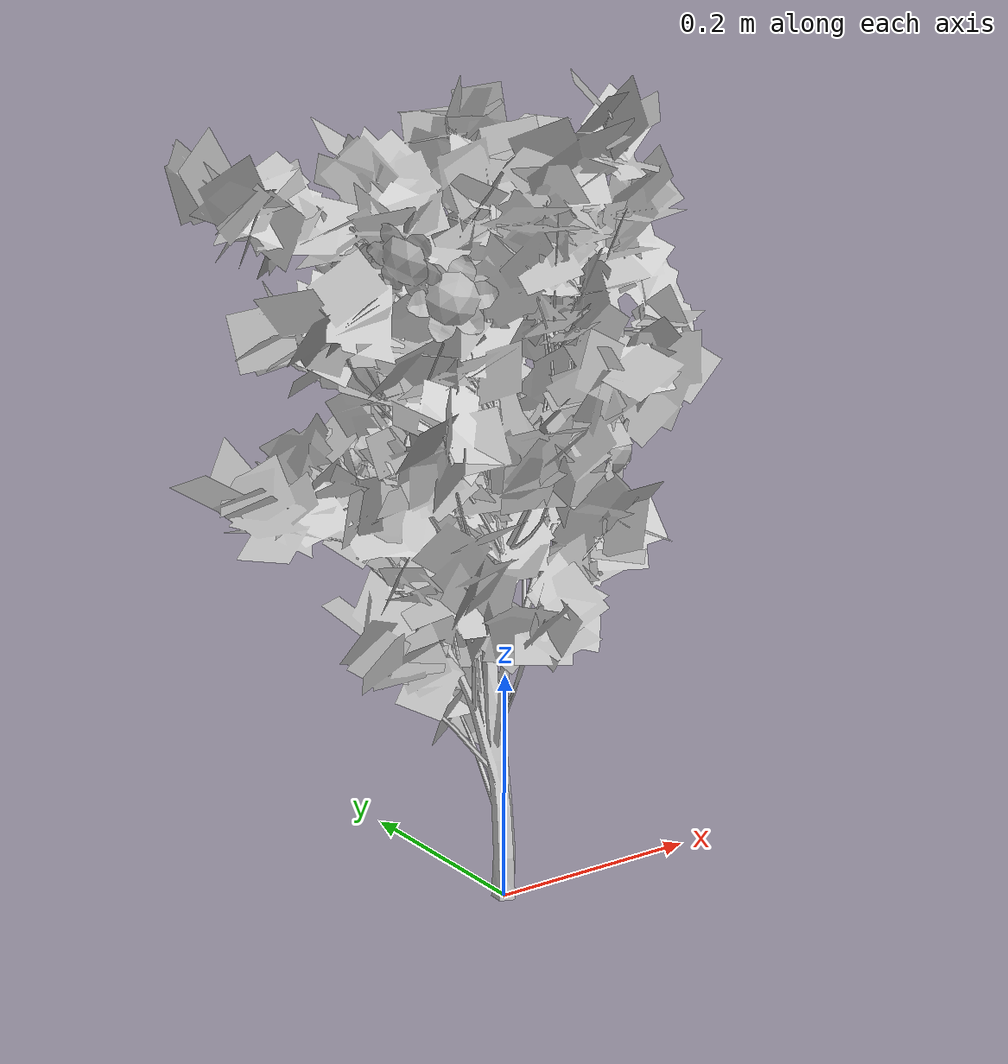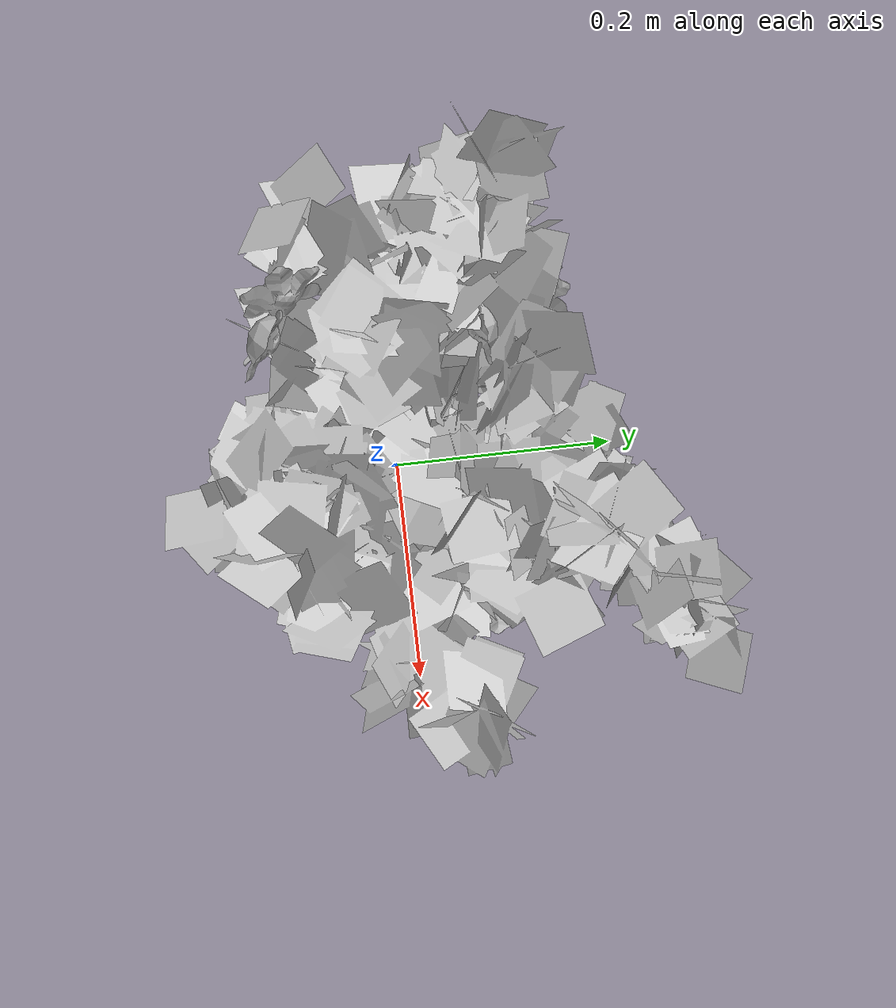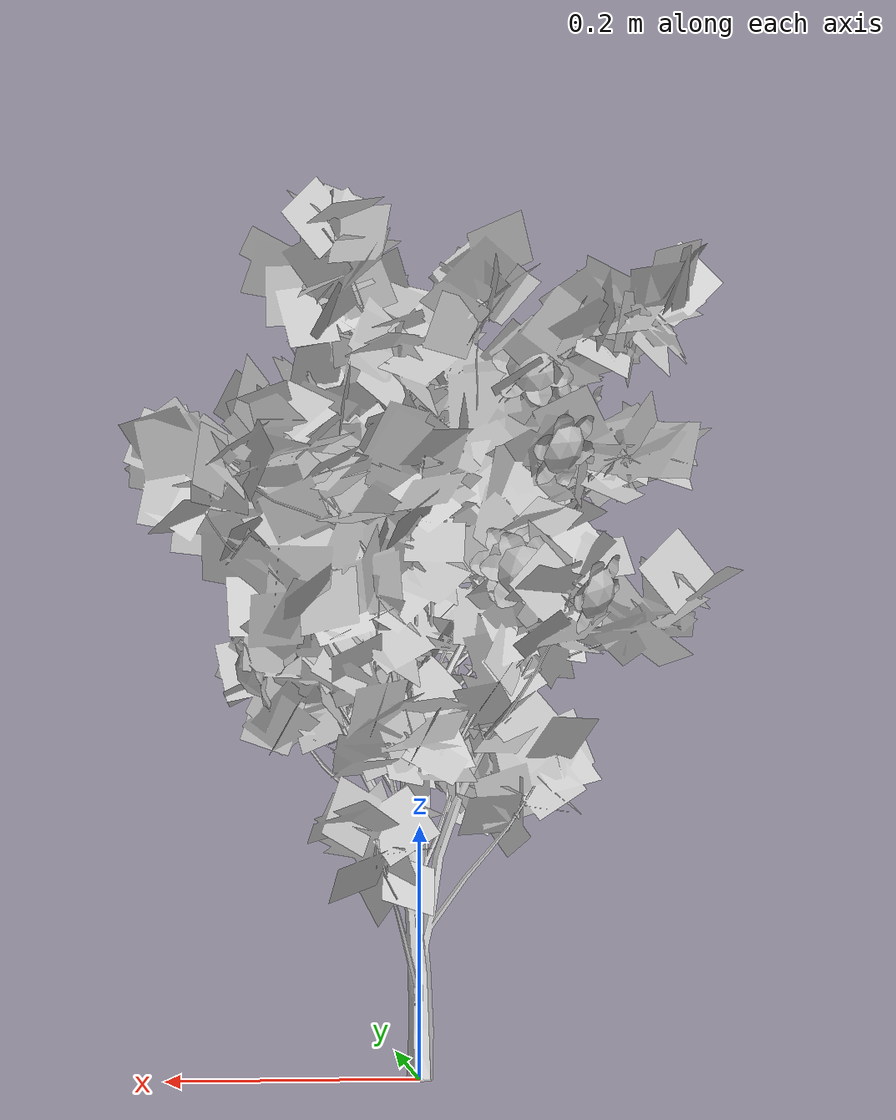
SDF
<?xml version="1.0" ?>
<sdf version="1.6">
  <model name="tree-flowers">
    <!--Skew-Seed:1919820307-->
    <static>true</static>
    <link name="link"/>
    <include>
      <uri>model://tree-mesh</uri>
      <pose>0 0 0 0 0 0</pose>
    </include>
    <joint name="tree_joint" type="fixed">
      <child>tree-mesh::link</child>
      <parent>link</parent>
    </joint>
    <include>
      <name>bramble_0</name>
      <uri>model://bramble</uri>
      <pose> 0.05499362877888281 0.05120013312888917 0.40615049548544035 -0.7896441221788179 1.3124144458476028 0.0</pose>
    </include>
    <joint name="flower_joint_0" type="fixed">
      <child>bramble_0::flower_link</child>
      <parent>link</parent>
    </joint>
    <include>
      <name>bramble_1</name>
      <uri>model://bramble</uri>
      <pose> -0.10084677755774485 -0.06861242385754861 0.5329050466472962 -4.146106117582032 2.0644400759813086 0.0</pose>
    </include>
    <joint name="flower_joint_1" type="fixed">
      <child>bramble_1::flower_link</child>
      <parent>link</parent>
    </joint>
    <include>
      <name>bramble_2</name>
      <uri>model://bramble</uri>
      <pose> -0.11683633599668639 0.12230868448970633 0.475073100915142 -2.716007799668479 0.8590422452341661 0.0</pose>
    </include>
    <joint name="flower_joint_2" type="fixed">
      <child>bramble_2::flower_link</child>
      <parent>link</parent>
    </joint>
    <include>
      <name>bramble_3</name>
      <uri>model://bramble</uri>
      <pose> 0.11855979531110486 0.0748691605470554 0.3124908397032237 -0.16152221803834776 2.0234220712646813 0.0</pose>
    </include>
    <joint name="flower_joint_3" type="fixed">
      <child>bramble_3::flower_link</child>
      <parent>link</parent>
    </joint>
    <include>
      <name>bramble_4</name>
      <uri>model://bramble</uri>
      <pose> 0.07923010667535799 -0.034580375398589644 0.39217564481227635 0.9656139877510284 1.55079264312691 0.0</pose>
    </include>
    <joint name="flower_joint_4" type="fixed">
      <child>bramble_4::flower_link</child>
      <parent>link</parent>
    </joint>
    <include>
      <name>bramble_5</name>
      <uri>model://bramble</uri>
      <pose> -0.07696502989073502 0.0525296882930035 0.3995473690619262 -1.8222911434118003 1.01587220214119 0.0</pose>
    </include>
    <joint name="flower_joint_5" type="fixed">
      <child>bramble_5::flower_link</child>
      <parent>link</parent>
    </joint>
    <include>
      <name>bramble_6</name>
      <uri>model://bramble</uri>
      <pose> -0.12773065990149052 -0.054842268449615365 0.5662886905550796 -3.478765667479132 1.133376618390432 0.0</pose>
    </include>
    <joint name="flower_joint_6" type="fixed">
      <child>bramble_6::flower_link</child>
      <parent>link</parent>
    </joint>
    <include>
      <name>bramble_7</name>
      <uri>model://bramble</uri>
      <pose> -0.13879079172979952 0.1239638740983902 0.3565382901512492 -2.8738389776168716 1.0688330339546435 0.0</pose>
    </include>
    <joint name="flower_joint_7" type="fixed">
      <child>bramble_7::flower_link</child>
      <parent>link</parent>
    </joint>
    <include>
      <name>bramble_8</name>
      <uri>model://bramble</uri>
      <pose> 0.08037480202796957 0.08528984708960843 0.32771045604847493 -0.5058330565439156 1.0153415760282025 0.0</pose>
    </include>
    <joint name="flower_joint_8" type="fixed">
      <child>bramble_8::flower_link</child>
      <parent>link</parent>
    </joint>
    <include>
      <name>bramble_9</name>
      <uri>model://bramble</uri>
      <pose> -0.08708475319364059 0.09529483692749385 0.3805300750963375 -1.895851511958515 0.8822380304545826 0.0</pose>
    </include>
    <joint name="flower_joint_9" type="fixed">
      <child>bramble_9::flower_link</child>
      <parent>link</parent>
    </joint>
    <include>
      <name>bramble_10</name>
      <uri>model://bramble</uri>
      <pose> -0.10708274646169255 0.056019068854275794 0.5436350480516452 -3.190855378422096 1.7740595753071942 0.0</pose>
    </include>
    <joint name="flower_joint_10" type="fixed">
      <child>bramble_10::flower_link</child>
      <parent>link</parent>
    </joint>
    <include>
      <name>bramble_11</name>
      <uri>model://bramble</uri>
      <pose> -0.09633784691504627 0.07621542308478169 0.5547376787061041 -1.7063093190774885 1.7414061567214605 0.0</pose>
    </include>
    <joint name="flower_joint_11" type="fixed">
      <child>bramble_11::flower_link</child>
      <parent>link</parent>
    </joint>
  </model>
</sdf>

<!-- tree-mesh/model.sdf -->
<sdf version="1.6">
  <model name="tree-mesh">
    <static>true</static>
    <link name="link">

      <collision name="collision">
        <geometry>
          <mesh>
            <uri>model://tree-mesh/meshes/new_tree.dae</uri>
            <scale>0.0625 0.0625 0.0625</scale>
          </mesh>
        </geometry>
      </collision>

      <!-- simplified collision for sake of speed since leaves shouldn't be blocking anyway -->

      <visual name="leaves">
        <geometry>
          <mesh>
            <uri>model://tree-mesh/meshes/leaves.dae</uri>
            <scale>0.0325 0.0325 0.0325</scale>
          </mesh>
        </geometry>
        <material>
          <script>
            <uri>model://tree-mesh/materials/scripts/</uri>
            <uri>model://tree-mesh/materials/textures/</uri>
            <name>NewTree/Branch</name>
          </script>
        </material>
      </visual>
      <visual name="bark">
        <geometry>
          <mesh>
            <uri>model://tree-mesh/meshes/bark.dae</uri>
            <scale>0.0325 0.0325 0.0325</scale>
          </mesh>
        </geometry>
        <material>
          <script>
            <uri>model://tree-mesh/materials/scripts/</uri>
            <uri>model://tree-mesh/materials/textures/</uri>
            <name>NewTree/Bark</name>
          </script>
        </material>
      </visual>
    </link>
  </model>
</sdf>

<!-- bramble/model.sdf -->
<sdf version="1.6">
  <model name="bramble-flower">
    <static>true</static>
    <link name="flower_link">
      <collision name="body_collision">
        <geometry>
          <mesh>
            <uri>model://bramble/meshes/bramble.dae</uri>
            <scale>0.4 0.4 0.4</scale>
          </mesh>
        </geometry>
      </collision>
      <visual name="petals">
        <geometry>
          <mesh>
            <uri>model://bramble/meshes/bramble.dae</uri>
            <scale>0.4 0.4 0.4</scale>
            <submesh>
              <name>petal</name>
            </submesh>
          </mesh>
        </geometry>
        <material>
          <script>
            <uri>model://bramble/materials/scripts/</uri>
            <uri>model://bramble/materials/textures/</uri>
            <name>Bramble/Petal</name>
          </script>
        </material>
      </visual>
      <visual name="carpel">
        <geometry>
          <mesh>
            <uri>model://bramble/meshes/bramble.dae</uri>
            <scale>0.4 0.4 0.4</scale>
            <submesh>
              <name>carpel</name>
            </submesh>
          </mesh>
        </geometry>
        <material>
          <script>
            <uri>model://bramble/materials/scripts/</uri>
            <uri>model://bramble/materials/textures/</uri>
            <name>Bramble/Carpel</name>
          </script>
        </material>
      </visual>
      <visual name="stamen">
        <geometry>
          <mesh>
            <uri>model://bramble/meshes/bramble.dae</uri>
            <scale>0.4 0.4 0.4</scale>
            <submesh>
              <name>stamen</name>
            </submesh>
          </mesh>
        </geometry>
        <material>
          <script>
            <uri>model://bramble/materials/scripts/</uri>
            <uri>model://bramble/materials/textures/</uri>
            <name>Bramble/Stamen</name>
          </script>
        </material>
      </visual>
    </link>
  </model>
</sdf>
